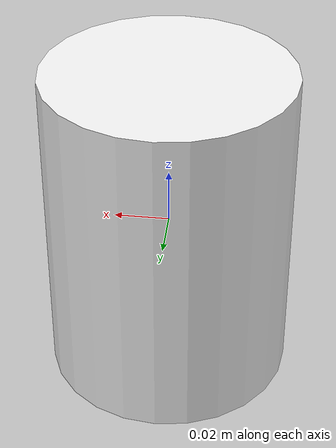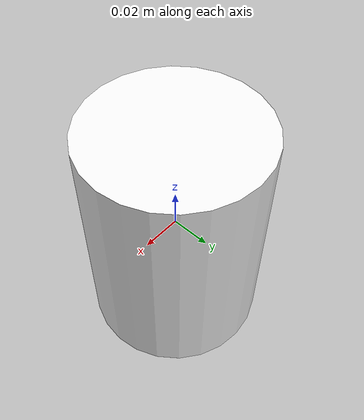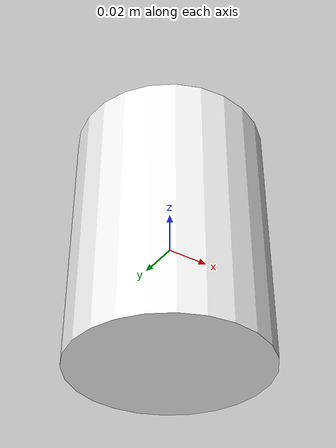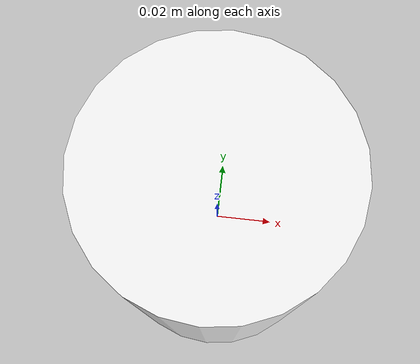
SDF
<?xml version="1.0"?>
<sdf version="1.8">
  <model name="cup">
    <static>true</static>
    <link name="link">
      <visual name="visual">
        <geometry>
          <cylinder><radius>0.045</radius><length>0.12</length></cylinder>
        </geometry>
        <material>
          <ambient>0.9 0.9 0.9 1</ambient>
          <diffuse>0.95 0.95 0.95 1</diffuse>
        </material>
      </visual>
      <collision name="collision">
        <geometry>
          <cylinder><radius>0.045</radius><length>0.12</length></cylinder>
        </geometry>
      </collision>
    </link>
  </model>
</sdf>
